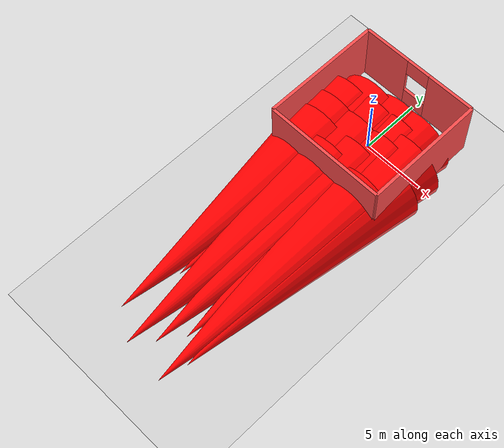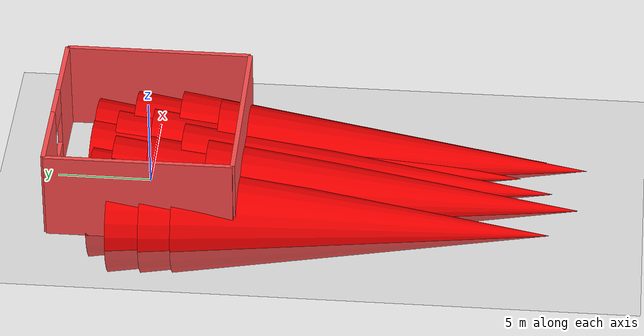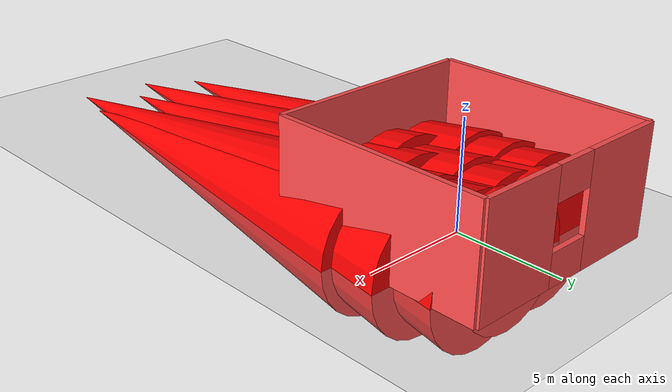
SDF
<sdf version="1.6">
 <world name="default">
  <scene>
   <ambient>0.25 0.3 0.5 1</ambient>
   <grid>0</grid>
   <background>0.7 0.7 0.7 1</background>
   <shadows>1</shadows>
  </scene>
  <light name="sun" type="directional">
   <pose>0 0 10 0 -0 0</pose>
   <diffuse>0.8 0.8 0.8 1</diffuse>
   <specular>0.1 0.1 0.1 1</specular>
   <attenuation>
    <range>1000</range>
    <constant>0.9</constant>
    <linear>0.01</linear>
    <quadratic>0.001</quadratic>
   </attenuation>
   <direction>-0.5 0.5 -1</direction>
  </light>
  <model name="ground_plane">
   <static>1</static>
   <link name="link">
    <collision name="collision">
     <geometry><plane><normal>0 0 1</normal><size>100 100</size></plane></geometry>
     <surface><friction><ode><mu>100</mu><mu2>50</mu2></ode></friction></surface>
    </collision>
    <visual name="visual">
     <cast_shadows>0</cast_shadows>
     <geometry><plane><normal>0 0 1</normal><size>100 100</size></plane></geometry>
     <material>
      <script><uri>file://media/materials/scripts/gazebo.material</uri><name>Gazebo/Grey</name></script>
     </material>
    </visual>
   </link>
  </model>
  <model name="room1">
   <static>1</static>
   <link name="right_wall">
    <collision name="right_wall_collision">
     <pose>5 0 2.5 0 -0 0</pose>
     <geometry><box><size>0.25 10 5</size></box></geometry>
    </collision>
    <visual name="right_wall_visual">
     <pose>5 0 2.5 0 -0 0</pose>
     <cast_shadows>0</cast_shadows>
     <geometry><box><size>0.25 10 5</size></box></geometry>
     <material>
      <ambient>1 0.3 0.3 1</ambient>
      <diffuse>1 0.3 0.3 1</diffuse>
      <specular>0 0 0 0</specular>
      <emissive>0 0 0 1</emissive>
     </material>
    </visual>
   </link>
   <link name="left_wall">
    <collision name="left_wall_collision">
     <pose>-5 0 2.5 0 -0 0</pose>
     <geometry><box><size>0.25 10 5</size></box></geometry>
    </collision>
    <visual name="left_wall_visual">
     <pose>-5 0 2.5 0 -0 0</pose>
     <cast_shadows>0</cast_shadows>
     <geometry><box><size>0.25 10 5</size></box></geometry>
     <material>
      <ambient>1 0.3 0.3 1</ambient>
      <diffuse>1 0.3 0.3 1</diffuse>
      <specular>0 0 0 0</specular>
      <emissive>0 0 0 1</emissive>
     </material>
    </visual>
   </link>
   <link name="back_wall">
    <collision name="back_wall_collision">
     <pose>0 -5 2.5 0 -0 0</pose>
     <geometry><box><size>10 0.25 5</size></box></geometry>
    </collision>
    <visual name="back_wall_visual">
     <pose>0 -5 2.5 0 -0 0</pose>
     <cast_shadows>0</cast_shadows>
     <geometry><box><size>10 0.25 5</size></box></geometry>
     <material>
      <ambient>1 0.3 0.3 1</ambient>
      <diffuse>1 0.3 0.3 1</diffuse>
      <specular>0 0 0 0</specular>
      <emissive>0 0 0 1</emissive>
     </material>
    </visual>
   </link>
   <link name="front_wall">
    <collision name="front_wall_left_collision">
     <pose>3 5 2.5 0 -0 0</pose>
     <geometry><box><size>4 0.25 5</size></box></geometry>
    </collision>
    <visual name="front_wall_left_visual">
     <pose>3 5 2.5 0 -0 0</pose>
     <cast_shadows>0</cast_shadows>
     <geometry><box><size>4 0.25 5</size></box></geometry>
     <material>
      <ambient>1 0.3 0.3 1</ambient>
      <diffuse>1 0.3 0.3 1</diffuse>
      <specular>0 0 0 0</specular>
      <emissive>0 0 0 1</emissive>
     </material>
    </visual>
    <collision name="front_wall_right_collision">
     <pose>3 5 2.5 0 -0 0</pose>
     <geometry><box><size>4 0.25 5</size></box></geometry>
    </collision>
    <visual name="front_wall_right_visual">
     <pose>-3 5 2.5 0 -0 0</pose>
     <cast_shadows>0</cast_shadows>
     <geometry><box><size>4 0.25 5</size></box></geometry>
     <material>
      <ambient>1 0.3 0.3 1</ambient>
      <diffuse>1 0.3 0.3 1</diffuse>
      <specular>0 0 0 0</specular>
      <emissive>0 0 0 1</emissive>
     </material>
    </visual>
    <collision name="front_wall_down_collision">
     <pose>0 5 0.75 0 -0 0</pose>
     <geometry><box><size>2 0.25 1.5</size></box></geometry>
    </collision>
    <visual name="front_wall_down_visual">
     <pose>0 5 0.75 0 -0 0</pose>
     <cast_shadows>0</cast_shadows>
     <geometry><box><size>2 0.25 1.5</size></box></geometry>
     <material>
      <ambient>1 0.3 0.3 1</ambient>
      <diffuse>1 0.3 0.3 1</diffuse>
      <specular>0 0 0 0</specular>
      <emissive>0 0 0 1</emissive>
     </material>
    </visual>
    <collision name="front_wall_up_collision">
     <pose>0 5 4.25 0 -0 0</pose>
     <geometry><box><size>2 0.25 1.5</size></box></geometry>
    </collision>
    <visual name="front_wall_up_visual">
     <pose>0 5 4.25 0 -0 0</pose>
     <cast_shadows>0</cast_shadows>
     <geometry><box><size>2 0.25 1.5</size></box></geometry>
     <material>
      <ambient>1 0.3 0.3 1</ambient>
      <diffuse>1 0.3 0.3 1</diffuse>
      <specular>0 0 0 0</specular>
      <emissive>0 0 0 1</emissive>
     </material>
    </visual>
   </link>
  </model>
  <gravity>0 0 -9.8</gravity>
  <magnetic_field>6e-06 2.3e-05 -4.2e-05</magnetic_field>
  <atmosphere type="adiabatic"/>
  <physics name="default_physics" default="0" type="ode">
   <max_step_size>0.001</max_step_size>
   <real_time_factor>1</real_time_factor>
   <real_time_update_rate>1000</real_time_update_rate>
  </physics>
  <spherical_coordinates>
   <surface_model>EARTH_WGS84</surface_model>
   <latitude_deg>0</latitude_deg>
   <longitude_deg>0</longitude_deg>
   <elevation>0</elevation>
   <heading_deg>0</heading_deg>
  </spherical_coordinates>
  <model name="cone">
   <static>1</static>
   <link name="cone">
    <pose>0 0 0.01 0 -0 0</pose>
    <inertial>
     <pose>5.2e-05 -1.4e-05 0.076727 0 -0 0</pose>
     <mass>2.9929</mass>
     <inertia>
      <ixx>0.015934</ixx>
      <ixy>3.3876e-08</ixy>
      <ixz>1.2277e-05</ixz>
      <iyy>0.015934</iyy>
      <iyz>3.2514e-06</iyz>
      <izz>0.0079448</izz>
     </inertia>
    </inertial>
    <collision name="cone_collision">
     <pose>0 0 0 1.5708 -0 0</pose>
     <geometry><mesh><scale>1 1 1</scale><uri>model://cone/meshes/cone.STL</uri></mesh></geometry>
    </collision>
    <visual name="cone_visual">
     <pose>0 0 0 1.5708 -0 0</pose>
     <geometry><mesh><scale>1 1 1</scale><uri>model://cone/meshes/cone.STL</uri></mesh></geometry>
     <material>
      <ambient>1 0 0 1</ambient>
      <diffuse>1 0 0 1</diffuse>
      <specular>0.1 0.1 0.1 1</specular>
      <emissive>0 0 0 0</emissive>
     </material>
    </visual>
   </link>
   <pose>1.37554 1.89156 0 0 -0 0</pose>
  </model>
  <model name="cone_0">
   <static>1</static>
   <link name="cone">
    <pose>0 0 0.01 0 -0 0</pose>
    <inertial>
     <pose>5.2e-05 -1.4e-05 0.076727 0 -0 0</pose>
     <mass>2.9929</mass>
     <inertia>
      <ixx>0.015934</ixx>
      <ixy>3.3876e-08</ixy>
      <ixz>1.2277e-05</ixz>
      <iyy>0.015934</iyy>
      <iyz>3.2514e-06</iyz>
      <izz>0.0079448</izz>
     </inertia>
    </inertial>
    <collision name="cone_collision">
     <pose>0 0 0 1.5708 -0 0</pose>
     <geometry><mesh><scale>1 1 1</scale><uri>model://cone/meshes/cone.STL</uri></mesh></geometry>
    </collision>
    <visual name="cone_visual">
     <pose>0 0 0 1.5708 -0 0</pose>
     <geometry><mesh><scale>1 1 1</scale><uri>model://cone/meshes/cone.STL</uri></mesh></geometry>
     <material>
      <ambient>1 0 0 1</ambient>
      <diffuse>1 0 0 1</diffuse>
      <specular>0.1 0.1 0.1 1</specular>
      <emissive>0 0 0 0</emissive>
     </material>
    </visual>
   </link>
   <pose>1.68538 -0.006951 0 0 -0 0</pose>
  </model>
  <model name="cone_1">
   <static>1</static>
   <link name="cone">
    <pose>0 0 0.01 0 -0 0</pose>
    <inertial>
     <pose>5.2e-05 -1.4e-05 0.076727 0 -0 0</pose>
     <mass>2.9929</mass>
     <inertia>
      <ixx>0.015934</ixx>
      <ixy>3.3876e-08</ixy>
      <ixz>1.2277e-05</ixz>
      <iyy>0.015934</iyy>
      <iyz>3.2514e-06</iyz>
      <izz>0.0079448</izz>
     </inertia>
    </inertial>
    <collision name="cone_collision">
     <pose>0 0 0 1.5708 -0 0</pose>
     <geometry><mesh><scale>1 1 1</scale><uri>model://cone/meshes/cone.STL</uri></mesh></geometry>
    </collision>
    <visual name="cone_visual">
     <pose>0 0 0 1.5708 -0 0</pose>
     <geometry><mesh><scale>1 1 1</scale><uri>model://cone/meshes/cone.STL</uri></mesh></geometry>
     <material>
      <ambient>1 0 0 1</ambient>
      <diffuse>1 0 0 1</diffuse>
      <specular>0.1 0.1 0.1 1</specular>
      <emissive>0 0 0 0</emissive>
     </material>
    </visual>
   </link>
   <pose>-0.905984 1.81675 0 0 -0 0</pose>
  </model>
  <model name="cone_2">
   <static>1</static>
   <link name="cone">
    <pose>0 0 0.01 0 -0 0</pose>
    <inertial>
     <pose>5.2e-05 -1.4e-05 0.076727 0 -0 0</pose>
     <mass>2.9929</mass>
     <inertia>
      <ixx>0.015934</ixx>
      <ixy>3.3876e-08</ixy>
      <ixz>1.2277e-05</ixz>
      <iyy>0.015934</iyy>
      <iyz>3.2514e-06</iyz>
      <izz>0.0079448</izz>
     </inertia>
    </inertial>
    <collision name="cone_collision">
     <pose>0 0 0 1.5708 -0 0</pose>
     <geometry><mesh><scale>1 1 1</scale><uri>model://cone/meshes/cone.STL</uri></mesh></geometry>
    </collision>
    <visual name="cone_visual">
     <pose>0 0 0 1.5708 -0 0</pose>
     <geometry><mesh><scale>1 1 1</scale><uri>model://cone/meshes/cone.STL</uri></mesh></geometry>
     <material>
      <ambient>1 0 0 1</ambient>
      <diffuse>1 0 0 1</diffuse>
      <specular>0.1 0.1 0.1 1</specular>
      <emissive>0 0 0 0</emissive>
     </material>
    </visual>
   </link>
   <pose>-0.924165 -0.059239 0 0 -0 0</pose>
  </model>
  <model name="cone_3">
   <static>1</static>
   <link name="cone">
    <pose>0 0 0.01 0 -0 0</pose>
    <inertial>
     <pose>5.2e-05 -1.4e-05 0.076727 0 -0 0</pose>
     <mass>2.9929</mass>
     <inertia>
      <ixx>0.015934</ixx>
      <ixy>3.3876e-08</ixy>
      <ixz>1.2277e-05</ixz>
      <iyy>0.015934</iyy>
      <iyz>3.2514e-06</iyz>
      <izz>0.0079448</izz>
     </inertia>
    </inertial>
    <collision name="cone_collision">
     <pose>0 0 0 1.5708 -0 0</pose>
     <geometry><mesh><scale>1 1 1</scale><uri>model://cone/meshes/cone.STL</uri></mesh></geometry>
    </collision>
    <visual name="cone_visual">
     <pose>0 0 0 1.5708 -0 0</pose>
     <geometry><mesh><scale>1 1 1</scale><uri>model://cone/meshes/cone.STL</uri></mesh></geometry>
     <material>
      <ambient>1 0 0 1</ambient>
      <diffuse>1 0 0 1</diffuse>
      <specular>0.1 0.1 0.1 1</specular>
      <emissive>0 0 0 0</emissive>
     </material>
    </visual>
   </link>
   <pose>-3.40627 1.74182 0 0 -0 0</pose>
  </model>
  <model name="cone_4">
   <static>1</static>
   <link name="cone">
    <pose>0 0 0.01 0 -0 0</pose>
    <inertial>
     <pose>5.2e-05 -1.4e-05 0.076727 0 -0 0</pose>
     <mass>2.9929</mass>
     <inertia>
      <ixx>0.015934</ixx>
      <ixy>3.3876e-08</ixy>
      <ixz>1.2277e-05</ixz>
      <iyy>0.015934</iyy>
      <iyz>3.2514e-06</iyz>
      <izz>0.0079448</izz>
     </inertia>
    </inertial>
    <collision name="cone_collision">
     <pose>0 0 0 1.5708 -0 0</pose>
     <geometry><mesh><scale>1 1 1</scale><uri>model://cone/meshes/cone.STL</uri></mesh></geometry>
    </collision>
    <visual name="cone_visual">
     <pose>0 0 0 1.5708 -0 0</pose>
     <geometry><mesh><scale>1 1 1</scale><uri>model://cone/meshes/cone.STL</uri></mesh></geometry>
     <material>
      <ambient>1 0 0 1</ambient>
      <diffuse>1 0 0 1</diffuse>
      <specular>0.1 0.1 0.1 1</specular>
      <emissive>0 0 0 0</emissive>
     </material>
    </visual>
   </link>
   <pose>-3.3346 -0.009977 0 0 -0 0</pose>
  </model>
  <model name="cone_5">
   <static>1</static>
   <link name="cone">
    <pose>0 0 0.01 0 -0 0</pose>
    <inertial>
     <pose>5.2e-05 -1.4e-05 0.076727 0 -0 0</pose>
     <mass>2.9929</mass>
     <inertia>
      <ixx>0.015934</ixx>
      <ixy>3.3876e-08</ixy>
      <ixz>1.2277e-05</ixz>
      <iyy>0.015934</iyy>
      <iyz>3.2514e-06</iyz>
      <izz>0.0079448</izz>
     </inertia>
    </inertial>
    <collision name="cone_collision">
     <pose>0 0 0 1.5708 -0 0</pose>
     <geometry><mesh><scale>1 1 1</scale><uri>model://cone/meshes/cone.STL</uri></mesh></geometry>
    </collision>
    <visual name="cone_visual">
     <pose>0 0 0 1.5708 -0 0</pose>
     <geometry><mesh><scale>1 1 1</scale><uri>model://cone/meshes/cone.STL</uri></mesh></geometry>
     <material>
      <ambient>1 0 0 1</ambient>
      <diffuse>1 0 0 1</diffuse>
      <specular>0.1 0.1 0.1 1</specular>
      <emissive>0 0 0 0</emissive>
     </material>
    </visual>
   </link>
   <pose>3.05565 1.05791 0 0 -0 0</pose>
  </model>
  <model name="cone_6">
   <static>1</static>
   <link name="cone">
    <pose>0 0 0.01 0 -0 0</pose>
    <inertial>
     <pose>5.2e-05 -1.4e-05 0.076727 0 -0 0</pose>
     <mass>2.9929</mass>
     <inertia>
      <ixx>0.015934</ixx>
      <ixy>3.3876e-08</ixy>
      <ixz>1.2277e-05</ixz>
      <iyy>0.015934</iyy>
      <iyz>3.2514e-06</iyz>
      <izz>0.0079448</izz>
     </inertia>
    </inertial>
    <collision name="cone_collision">
     <pose>0 0 0 1.5708 -0 0</pose>
     <geometry><mesh><scale>1 1 1</scale><uri>model://cone/meshes/cone.STL</uri></mesh></geometry>
    </collision>
    <visual name="cone_visual">
     <pose>0 0 0 1.5708 -0 0</pose>
     <geometry><mesh><scale>1 1 1</scale><uri>model://cone/meshes/cone.STL</uri></mesh></geometry>
     <material>
      <ambient>1 0 0 1</ambient>
      <diffuse>1 0 0 1</diffuse>
      <specular>0.1 0.1 0.1 1</specular>
      <emissive>0 0 0 0</emissive>
     </material>
    </visual>
   </link>
   <pose>3.22738 -1.40427 0 0 -0 0</pose>
  </model>
  <model name="cone_7">
   <static>1</static>
   <link name="cone">
    <pose>0 0 0.01 0 -0 0</pose>
    <inertial>
     <pose>5.2e-05 -1.4e-05 0.076727 0 -0 0</pose>
     <mass>2.9929</mass>
     <inertia>
      <ixx>0.015934</ixx>
      <ixy>3.3876e-08</ixy>
      <ixz>1.2277e-05</ixz>
      <iyy>0.015934</iyy>
      <iyz>3.2514e-06</iyz>
      <izz>0.0079448</izz>
     </inertia>
    </inertial>
    <collision name="cone_collision">
     <pose>0 0 0 1.5708 -0 0</pose>
     <geometry><mesh><scale>1 1 1</scale><uri>model://cone/meshes/cone.STL</uri></mesh></geometry>
    </collision>
    <visual name="cone_visual">
     <pose>0 0 0 1.5708 -0 0</pose>
     <geometry><mesh><scale>1 1 1</scale><uri>model://cone/meshes/cone.STL</uri></mesh></geometry>
     <material>
      <ambient>1 0 0 1</ambient>
      <diffuse>1 0 0 1</diffuse>
      <specular>0.1 0.1 0.1 1</specular>
      <emissive>0 0 0 0</emissive>
     </material>
    </visual>
   </link>
   <pose>-2.18617 2.91134 0 0 -0 0</pose>
  </model>
  <model name="cone_8">
   <static>1</static>
   <link name="cone">
    <pose>0 0 0.01 0 -0 0</pose>
    <inertial>
     <pose>5.2e-05 -1.4e-05 0.076727 0 -0 0</pose>
     <mass>2.9929</mass>
     <inertia>
      <ixx>0.015934</ixx>
      <ixy>3.3876e-08</ixy>
      <ixz>1.2277e-05</ixz>
      <iyy>0.015934</iyy>
      <iyz>3.2514e-06</iyz>
      <izz>0.0079448</izz>
     </inertia>
    </inertial>
    <collision name="cone_collision">
     <pose>0 0 0 1.5708 -0 0</pose>
     <geometry><mesh><scale>1 1 1</scale><uri>model://cone/meshes/cone.STL</uri></mesh></geometry>
    </collision>
    <visual name="cone_visual">
     <pose>0 0 0 1.5708 -0 0</pose>
     <geometry><mesh><scale>1 1 1</scale><uri>model://cone/meshes/cone.STL</uri></mesh></geometry>
     <material>
      <ambient>1 0 0 1</ambient>
      <diffuse>1 0 0 1</diffuse>
      <specular>0.1 0.1 0.1 1</specular>
      <emissive>0 0 0 0</emissive>
     </material>
    </visual>
   </link>
   <pose>-3.18938 -1.70581 0 0 -0 0</pose>
  </model>
  <model name="cone_9">
   <static>1</static>
   <link name="cone">
    <pose>0 0 0.01 0 -0 0</pose>
    <inertial>
     <pose>5.2e-05 -1.4e-05 0.076727 0 -0 0</pose>
     <mass>2.9929</mass>
     <inertia>
      <ixx>0.015934</ixx>
      <ixy>3.3876e-08</ixy>
      <ixz>1.2277e-05</ixz>
      <iyy>0.015934</iyy>
      <iyz>3.2514e-06</iyz>
      <izz>0.0079448</izz>
     </inertia>
    </inertial>
    <collision name="cone_collision">
     <pose>0 0 0 1.5708 -0 0</pose>
     <geometry><mesh><scale>1 1 1</scale><uri>model://cone/meshes/cone.STL</uri></mesh></geometry>
    </collision>
    <visual name="cone_visual">
     <pose>0 0 0 1.5708 -0 0</pose>
     <geometry><mesh><scale>1 1 1</scale><uri>model://cone/meshes/cone.STL</uri></mesh></geometry>
     <material>
      <ambient>1 0 0 1</ambient>
      <diffuse>1 0 0 1</diffuse>
      <specular>0.1 0.1 0.1 1</specular>
      <emissive>0 0 0 0</emissive>
     </material>
    </visual>
   </link>
   <pose>-0.908089 -3.21177 0 0 -0 0</pose>
  </model>
  <model name="cone_10">
   <static>1</static>
   <link name="cone">
    <pose>0 0 0.01 0 -0 0</pose>
    <inertial>
     <pose>5.2e-05 -1.4e-05 0.076727 0 -0 0</pose>
     <mass>2.9929</mass>
     <inertia>
      <ixx>0.015934</ixx>
      <ixy>3.3876e-08</ixy>
      <ixz>1.2277e-05</ixz>
      <iyy>0.015934</iyy>
      <iyz>3.2514e-06</iyz>
      <izz>0.0079448</izz>
     </inertia>
    </inertial>
    <collision name="cone_collision">
     <pose>0 0 0 1.5708 -0 0</pose>
     <geometry><mesh><scale>1 1 1</scale><uri>model://cone/meshes/cone.STL</uri></mesh></geometry>
    </collision>
    <visual name="cone_visual">
     <pose>0 0 0 1.5708 -0 0</pose>
     <geometry><mesh><scale>1 1 1</scale><uri>model://cone/meshes/cone.STL</uri></mesh></geometry>
     <material>
      <ambient>1 0 0 1</ambient>
      <diffuse>1 0 0 1</diffuse>
      <specular>0.1 0.1 0.1 1</specular>
      <emissive>0 0 0 0</emissive>
     </material>
    </visual>
   </link>
   <pose>0.42777 3.13435 0 0 -0 0</pose>
  </model>
  <model name="cone_11">
   <static>1</static>
   <link name="cone">
    <pose>0 0 0.01 0 -0 0</pose>
    <inertial>
     <pose>5.2e-05 -1.4e-05 0.076727 0 -0 0</pose>
     <mass>2.9929</mass>
     <inertia>
      <ixx>0.015934</ixx>
      <ixy>3.3876e-08</ixy>
      <ixz>1.2277e-05</ixz>
      <iyy>0.015934</iyy>
      <iyz>3.2514e-06</iyz>
      <izz>0.0079448</izz>
     </inertia>
    </inertial>
    <collision name="cone_collision">
     <pose>0 0 0 1.5708 -0 0</pose>
     <geometry><mesh><scale>1 1 1</scale><uri>model://cone/meshes/cone.STL</uri></mesh></geometry>
    </collision>
    <visual name="cone_visual">
     <pose>0 0 0 1.5708 -0 0</pose>
     <geometry><mesh><scale>1 1 1</scale><uri>model://cone/meshes/cone.STL</uri></mesh></geometry>
     <material>
      <ambient>1 0 0 1</ambient>
      <diffuse>1 0 0 1</diffuse>
      <specular>0.1 0.1 0.1 1</specular>
      <emissive>0 0 0 0</emissive>
     </material>
    </visual>
   </link>
   <pose>2.21792 3.1179 0 0 -0 0</pose>
  </model>
  <model name="cone_12">
   <static>1</static>
   <link name="cone">
    <pose>0 0 0.01 0 -0 0</pose>
    <inertial>
     <pose>5.2e-05 -1.4e-05 0.076727 0 -0 0</pose>
     <mass>2.9929</mass>
     <inertia>
      <ixx>0.015934</ixx>
      <ixy>3.3876e-08</ixy>
      <ixz>1.2277e-05</ixz>
      <iyy>0.015934</iyy>
      <iyz>3.2514e-06</iyz>
      <izz>0.0079448</izz>
     </inertia>
    </inertial>
    <collision name="cone_collision">
     <pose>0 0 0 1.5708 -0 0</pose>
     <geometry><mesh><scale>1 1 1</scale><uri>model://cone/meshes/cone.STL</uri></mesh></geometry>
    </collision>
    <visual name="cone_visual">
     <pose>0 0 0 1.5708 -0 0</pose>
     <geometry><mesh><scale>1 1 1</scale><uri>model://cone/meshes/cone.STL</uri></mesh></geometry>
     <material>
      <ambient>1 0 0 1</ambient>
      <diffuse>1 0 0 1</diffuse>
      <specular>0.1 0.1 0.1 1</specular>
      <emissive>0 0 0 0</emissive>
     </material>
    </visual>
   </link>
   <pose>0.44542 -1.7852 0 0 -0 0</pose>
  </model>
  <model name="cone_13">
   <static>1</static>
   <link name="cone">
    <pose>0 0 0.01 0 -0 0</pose>
    <inertial>
     <pose>5.2e-05 -1.4e-05 0.076727 0 -0 0</pose>
     <mass>2.9929</mass>
     <inertia>
      <ixx>0.015934</ixx>
      <ixy>3.3876e-08</ixy>
      <ixz>1.2277e-05</ixz>
      <iyy>0.015934</iyy>
      <iyz>3.2514e-06</iyz>
      <izz>0.0079448</izz>
     </inertia>
    </inertial>
    <collision name="cone_collision">
     <pose>0 0 0 1.5708 -0 0</pose>
     <geometry><mesh><scale>1 1 1</scale><uri>model://cone/meshes/cone.STL</uri></mesh></geometry>
    </collision>
    <visual name="cone_visual">
     <pose>0 0 0 1.5708 -0 0</pose>
     <geometry><mesh><scale>1 1 1</scale><uri>model://cone/meshes/cone.STL</uri></mesh></geometry>
     <material>
      <ambient>1 0 0 1</ambient>
      <diffuse>1 0 0 1</diffuse>
      <specular>0.1 0.1 0.1 1</specular>
      <emissive>0 0 0 0</emissive>
     </material>
    </visual>
   </link>
   <pose>2.66002 -3.53717 0 0 -0 0</pose>
  </model>
 </world>
</sdf>
